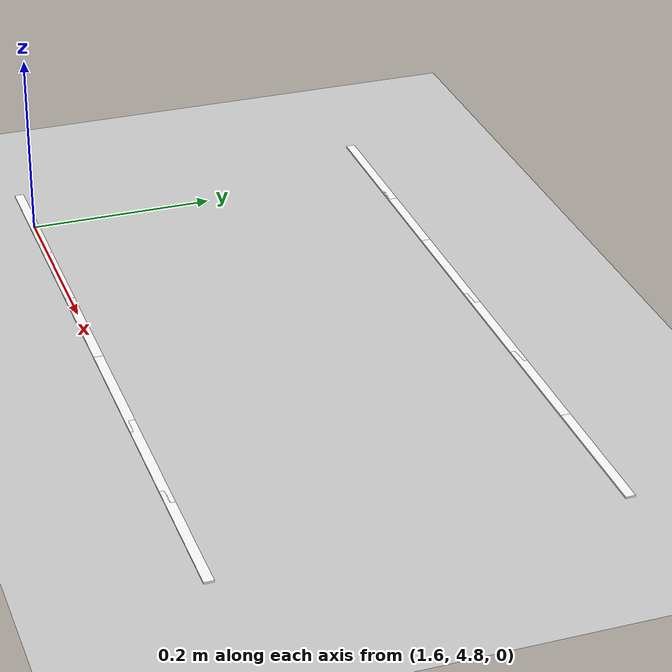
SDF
<sdf version="1.7">
 <world name="default">
  <model name="ground_plane">
   <static>1</static>
   <link name="link">
    <collision name="collision">
     <geometry><plane><normal>0 0 1</normal><size>100 100</size></plane></geometry>
     <surface>
      <contact><collide_bitmask>65535</collide_bitmask></contact>
      <friction><ode><mu>100</mu><mu2>50</mu2></ode></friction>
     </surface>
    </collision>
    <visual name="visual">
     <cast_shadows>0</cast_shadows>
     <geometry><plane><normal>0 0 1</normal><size>100 100</size></plane></geometry>
     <material>
      <script><uri>file://media/materials/scripts/gazebo.material</uri><name>Gazebo/Grey</name></script>
     </material>
    </visual>
   </link>
  </model>
  <model name="lane_line_left_206">
   <static>1</static>
   <link name="link">
    <pose>0 0 -0.004 0 -0 0</pose>
    <visual name="visual">
     <geometry><box><size>0.1424 0.01 0.01</size></box></geometry>
     <material><ambient>1 1 1 1</ambient><diffuse>1 1 1 1</diffuse></material>
    </visual>
    <collision name="collision"><geometry><box><size>0.1424 0.01 0.01</size></box></geometry></collision>
   </link>
   <pose>2.20408 4.8 0 0 -0 3.14159</pose>
  </model>
  <model name="lane_line_right_206">
   <static>1</static>
   <link name="link">
    <pose>0 0 -0.004 0 -0 0</pose>
    <visual name="visual">
     <geometry><box><size>0.1424 0.01 0.01</size></box></geometry>
     <material><ambient>1 1 1 1</ambient><diffuse>1 1 1 1</diffuse></material>
    </visual>
    <collision name="collision"><geometry><box><size>0.1424 0.01 0.01</size></box></geometry></collision>
   </link>
   <pose>2.20408 5.2 0 0 -0 3.14159</pose>
  </model>
  <model name="lane_line_left_207">
   <static>1</static>
   <link name="link">
    <pose>0 0 -0.004 0 -0 0</pose>
    <visual name="visual">
     <geometry><box><size>0.1424 0.01 0.01</size></box></geometry>
     <material><ambient>1 1 1 1</ambient><diffuse>1 1 1 1</diffuse></material>
    </visual>
    <collision name="collision"><geometry><box><size>0.1424 0.01 0.01</size></box></geometry></collision>
   </link>
   <pose>2.08163 4.8 0 0 -0 3.14159</pose>
  </model>
  <model name="lane_line_right_207">
   <static>1</static>
   <link name="link">
    <pose>0 0 -0.004 0 -0 0</pose>
    <visual name="visual">
     <geometry><box><size>0.1424 0.01 0.01</size></box></geometry>
     <material><ambient>1 1 1 1</ambient><diffuse>1 1 1 1</diffuse></material>
    </visual>
    <collision name="collision"><geometry><box><size>0.1424 0.01 0.01</size></box></geometry></collision>
   </link>
   <pose>2.08163 5.2 0 0 -0 3.14159</pose>
  </model>
  <model name="lane_line_left_208">
   <static>1</static>
   <link name="link">
    <pose>0 0 -0.004 0 -0 0</pose>
    <visual name="visual">
     <geometry><box><size>0.1424 0.01 0.01</size></box></geometry>
     <material><ambient>1 1 1 1</ambient><diffuse>1 1 1 1</diffuse></material>
    </visual>
    <collision name="collision"><geometry><box><size>0.1424 0.01 0.01</size></box></geometry></collision>
   </link>
   <pose>1.95918 4.8 0 0 -0 3.14159</pose>
  </model>
  <model name="lane_line_right_208">
   <static>1</static>
   <link name="link">
    <pose>0 0 -0.004 0 -0 0</pose>
    <visual name="visual">
     <geometry><box><size>0.1424 0.01 0.01</size></box></geometry>
     <material><ambient>1 1 1 1</ambient><diffuse>1 1 1 1</diffuse></material>
    </visual>
    <collision name="collision"><geometry><box><size>0.1424 0.01 0.01</size></box></geometry></collision>
   </link>
   <pose>1.95918 5.2 0 0 -0 3.14159</pose>
  </model>
  <model name="lane_line_left_209">
   <static>1</static>
   <link name="link">
    <pose>0 0 -0.004 0 -0 0</pose>
    <visual name="visual">
     <geometry><box><size>0.1424 0.01 0.01</size></box></geometry>
     <material><ambient>1 1 1 1</ambient><diffuse>1 1 1 1</diffuse></material>
    </visual>
    <collision name="collision"><geometry><box><size>0.1424 0.01 0.01</size></box></geometry></collision>
   </link>
   <pose>1.83673 4.8 0 0 -0 3.14159</pose>
  </model>
  <model name="lane_line_right_209">
   <static>1</static>
   <link name="link">
    <pose>0 0 -0.004 0 -0 0</pose>
    <visual name="visual">
     <geometry><box><size>0.1424 0.01 0.01</size></box></geometry>
     <material><ambient>1 1 1 1</ambient><diffuse>1 1 1 1</diffuse></material>
    </visual>
    <collision name="collision"><geometry><box><size>0.1424 0.01 0.01</size></box></geometry></collision>
   </link>
   <pose>1.83673 5.2 0 0 -0 3.14159</pose>
  </model>
  <model name="lane_line_left_210">
   <static>1</static>
   <link name="link">
    <pose>0 0 -0.004 0 -0 0</pose>
    <visual name="visual">
     <geometry><box><size>0.1424 0.01 0.01</size></box></geometry>
     <material><ambient>1 1 1 1</ambient><diffuse>1 1 1 1</diffuse></material>
    </visual>
    <collision name="collision"><geometry><box><size>0.1424 0.01 0.01</size></box></geometry></collision>
   </link>
   <pose>1.71429 4.8 0 0 -0 3.14159</pose>
  </model>
  <model name="lane_line_right_210">
   <static>1</static>
   <link name="link">
    <pose>0 0 -0.004 0 -0 0</pose>
    <visual name="visual">
     <geometry><box><size>0.1424 0.01 0.01</size></box></geometry>
     <material><ambient>1 1 1 1</ambient><diffuse>1 1 1 1</diffuse></material>
    </visual>
    <collision name="collision"><geometry><box><size>0.1424 0.01 0.01</size></box></geometry></collision>
   </link>
   <pose>1.71429 5.2 0 0 -0 3.14159</pose>
  </model>
  <model name="lane_line_left_211">
   <static>1</static>
   <link name="link">
    <pose>0 0 -0.004 0 -0 0</pose>
    <visual name="visual">
     <geometry><box><size>0.1424 0.01 0.01</size></box></geometry>
     <material><ambient>1 1 1 1</ambient><diffuse>1 1 1 1</diffuse></material>
    </visual>
    <collision name="collision"><geometry><box><size>0.1424 0.01 0.01</size></box></geometry></collision>
   </link>
   <pose>1.59184 4.8 0 0 -0 3.14159</pose>
  </model>
  <model name="lane_line_right_211">
   <static>1</static>
   <link name="link">
    <pose>0 0 -0.004 0 -0 0</pose>
    <visual name="visual">
     <geometry><box><size>0.1424 0.01 0.01</size></box></geometry>
     <material><ambient>1 1 1 1</ambient><diffuse>1 1 1 1</diffuse></material>
    </visual>
    <collision name="collision"><geometry><box><size>0.1424 0.01 0.01</size></box></geometry></collision>
   </link>
   <pose>1.59184 5.2 0 0 -0 3.14159</pose>
  </model>
 </world>
</sdf>
